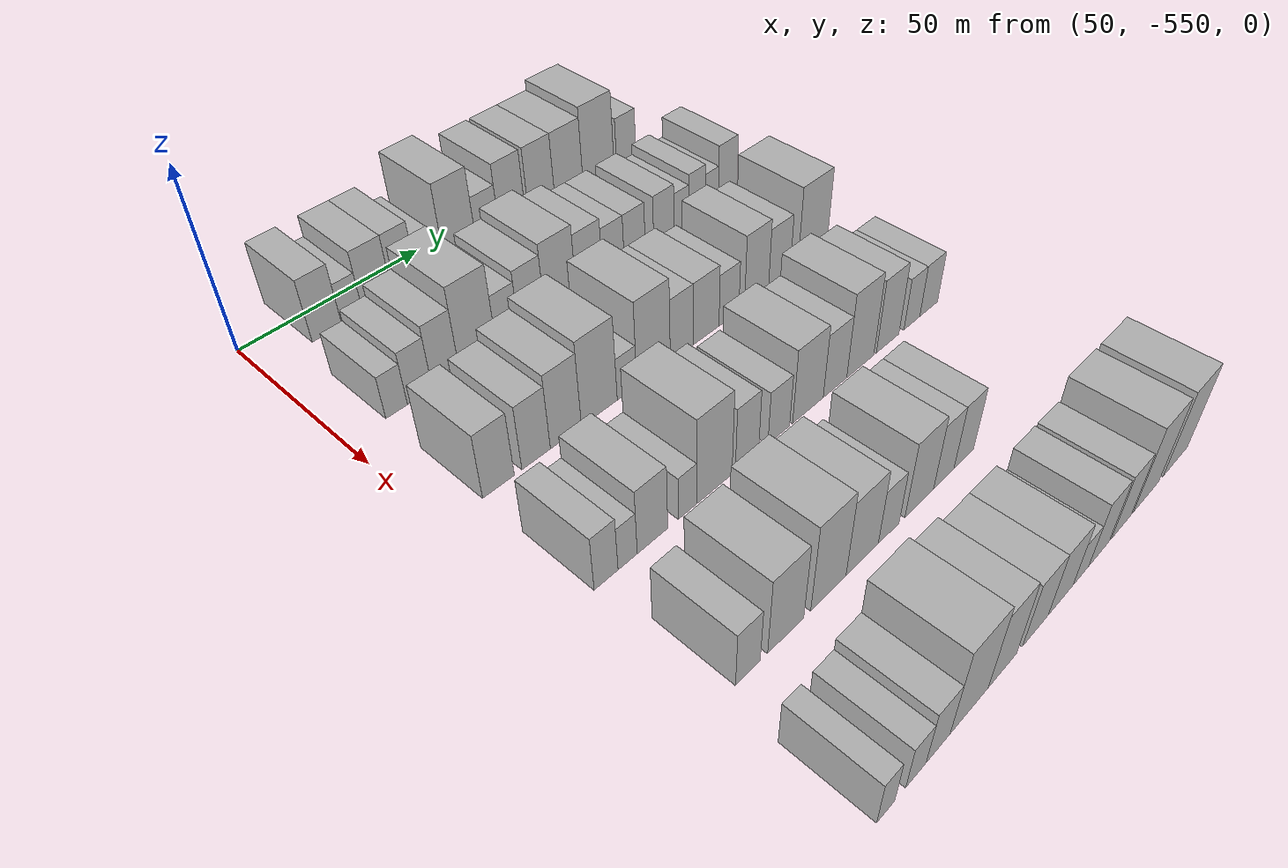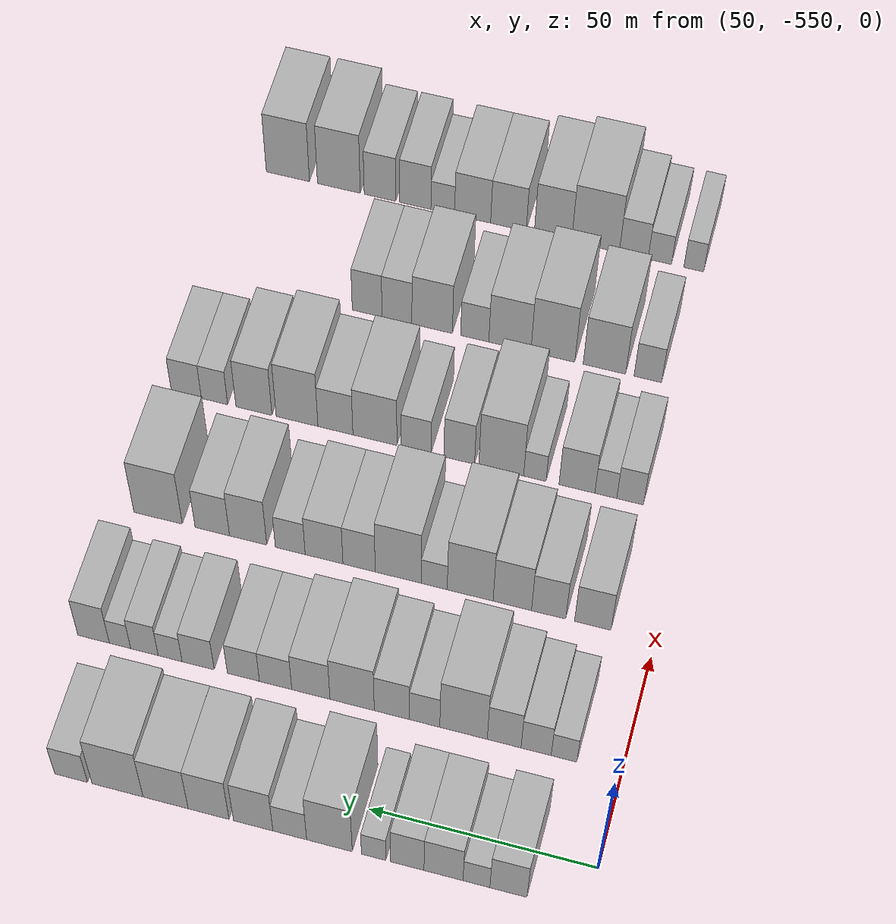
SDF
<sdf version="1.6">
 <world name="default">
  <model name="building_1">
   <static>1</static>
   <pose>50.0000 -533.0046 0 0.000000 0.000000 0.000000</pose>
   <link name="link">
    <pose>0 0 9.00 0 0 0</pose>
    <collision name="collision"><geometry><box><size>20.0000 7.9907 18.0000</size></box></geometry></collision>
    <visual name="visual">
     <cast_shadows>0</cast_shadows>
     <geometry><box><size>20.0000 7.9907 18.0000</size></box></geometry>
     <material>
      <script>
       <uri>model://HANNAS_wall/materials/scripts</uri>
       <uri>model://HANNAS_wall/materials/textures</uri>
       <name>vrc/HANNAS_wall</name>
      </script>
     </material>
    </visual>
   </link>
  </model>
  <model name="building_2">
   <static>1</static>
   <pose>50.0000 -526.0997 0 0.000000 0.000000 0.000000</pose>
   <link name="link">
    <pose>0 0 6.00 0 0 0</pose>
    <collision name="collision"><geometry><box><size>20.0000 5.8191 12.0000</size></box></geometry></collision>
    <visual name="visual">
     <cast_shadows>0</cast_shadows>
     <geometry><box><size>20.0000 5.8191 12.0000</size></box></geometry>
     <material>
      <script>
       <uri>model://HANNAS_wall/materials/scripts</uri>
       <uri>model://HANNAS_wall/materials/textures</uri>
       <name>vrc/HANNAS_wall</name>
      </script>
     </material>
    </visual>
   </link>
  </model>
  <model name="building_3">
   <static>1</static>
   <pose>50.0000 -518.9652 0 0.000000 0.000000 0.000000</pose>
   <link name="link">
    <pose>0 0 9.00 0 0 0</pose>
    <collision name="collision"><geometry><box><size>20.0000 8.4499 18.0000</size></box></geometry></collision>
    <visual name="visual">
     <cast_shadows>0</cast_shadows>
     <geometry><box><size>20.0000 8.4499 18.0000</size></box></geometry>
     <material>
      <script>
       <uri>model://HANNAS_wall/materials/scripts</uri>
       <uri>model://HANNAS_wall/materials/textures</uri>
       <name>vrc/HANNAS_wall</name>
      </script>
     </material>
    </visual>
   </link>
  </model>
  <model name="building_4">
   <static>1</static>
   <pose>50.0000 -511.0897 0 0.000000 0.000000 0.000000</pose>
   <link name="link">
    <pose>0 0 9.00 0 0 0</pose>
    <collision name="collision"><geometry><box><size>20.0000 7.3011 18.0000</size></box></geometry></collision>
    <visual name="visual">
     <cast_shadows>0</cast_shadows>
     <geometry><box><size>20.0000 7.3011 18.0000</size></box></geometry>
     <material>
      <script>
       <uri>model://HANNAS_wall/materials/scripts</uri>
       <uri>model://HANNAS_wall/materials/textures</uri>
       <name>vrc/HANNAS_wall</name>
      </script>
     </material>
    </visual>
   </link>
  </model>
  <model name="building_5">
   <static>1</static>
   <pose>50.0000 -503.7773 0 0.000000 0.000000 0.000000</pose>
   <link name="link">
    <pose>0 0 6.00 0 0 0</pose>
    <collision name="collision"><geometry><box><size>20.0000 5.3236 12.0000</size></box></geometry></collision>
    <visual name="visual">
     <cast_shadows>0</cast_shadows>
     <geometry><box><size>20.0000 5.3236 12.0000</size></box></geometry>
     <material>
      <script>
       <uri>model://HANNAS_wall/materials/scripts</uri>
       <uri>model://HANNAS_wall/materials/textures</uri>
       <name>vrc/HANNAS_wall</name>
      </script>
     </material>
    </visual>
   </link>
  </model>
  <model name="building_6">
   <static>1</static>
   <pose>50.0000 -494.1183 0 0.000000 0.000000 0.000000</pose>
   <link name="link">
    <pose>0 0 12.00 0 0 0</pose>
    <collision name="collision"><geometry><box><size>20.0000 9.9944 24.0000</size></box></geometry></collision>
    <visual name="visual">
     <cast_shadows>0</cast_shadows>
     <geometry><box><size>20.0000 9.9944 24.0000</size></box></geometry>
     <material>
      <script>
       <uri>model://HANNAS_wall/materials/scripts</uri>
       <uri>model://HANNAS_wall/materials/textures</uri>
       <name>vrc/HANNAS_wall</name>
      </script>
     </material>
    </visual>
   </link>
  </model>
  <model name="building_7">
   <static>1</static>
   <pose>50.0000 -485.4049 0 0.000000 0.000000 0.000000</pose>
   <link name="link">
    <pose>0 0 7.50 0 0 0</pose>
    <collision name="collision"><geometry><box><size>20.0000 7.4322 15.0000</size></box></geometry></collision>
    <visual name="visual">
     <cast_shadows>0</cast_shadows>
     <geometry><box><size>20.0000 7.4322 15.0000</size></box></geometry>
     <material>
      <script>
       <uri>model://HANNAS_wall/materials/scripts</uri>
       <uri>model://HANNAS_wall/materials/textures</uri>
       <name>vrc/HANNAS_wall</name>
      </script>
     </material>
    </visual>
   </link>
  </model>
  <model name="building_8">
   <static>1</static>
   <pose>50.0000 -477.3388 0 0.000000 0.000000 0.000000</pose>
   <link name="link">
    <pose>0 0 10.50 0 0 0</pose>
    <collision name="collision"><geometry><box><size>20.0000 8.7000 21.0000</size></box></geometry></collision>
    <visual name="visual">
     <cast_shadows>0</cast_shadows>
     <geometry><box><size>20.0000 8.7000 21.0000</size></box></geometry>
     <material>
      <script>
       <uri>model://HANNAS_wall/materials/scripts</uri>
       <uri>model://HANNAS_wall/materials/textures</uri>
       <name>vrc/HANNAS_wall</name>
      </script>
     </material>
    </visual>
   </link>
  </model>
  <model name="building_9">
   <static>1</static>
   <pose>50.0000 -467.4540 0 0.000000 0.000000 0.000000</pose>
   <link name="link">
    <pose>0 0 10.50 0 0 0</pose>
    <collision name="collision"><geometry><box><size>20.0000 9.0695 21.0000</size></box></geometry></collision>
    <visual name="visual">
     <cast_shadows>0</cast_shadows>
     <geometry><box><size>20.0000 9.0695 21.0000</size></box></geometry>
     <material>
      <script>
       <uri>model://HANNAS_wall/materials/scripts</uri>
       <uri>model://HANNAS_wall/materials/textures</uri>
       <name>vrc/HANNAS_wall</name>
      </script>
     </material>
    </visual>
   </link>
  </model>
  <model name="building_10">
   <static>1</static>
   <pose>50.0000 -457.8971 0 0.000000 0.000000 0.000000</pose>
   <link name="link">
    <pose>0 0 10.50 0 0 0</pose>
    <collision name="collision"><geometry><box><size>20.0000 10.0442 21.0000</size></box></geometry></collision>
    <visual name="visual">
     <cast_shadows>0</cast_shadows>
     <geometry><box><size>20.0000 10.0442 21.0000</size></box></geometry>
     <material>
      <script>
       <uri>model://HANNAS_wall/materials/scripts</uri>
       <uri>model://HANNAS_wall/materials/textures</uri>
       <name>vrc/HANNAS_wall</name>
      </script>
     </material>
    </visual>
   </link>
  </model>
  <model name="building_11">
   <static>1</static>
   <pose>50.0000 -447.1592 0 0.000000 0.000000 0.000000</pose>
   <link name="link">
    <pose>0 0 12.00 0 0 0</pose>
    <collision name="collision"><geometry><box><size>20.0000 11.4316 24.0000</size></box></geometry></collision>
    <visual name="visual">
     <cast_shadows>0</cast_shadows>
     <geometry><box><size>20.0000 11.4316 24.0000</size></box></geometry>
     <material>
      <script>
       <uri>model://HANNAS_wall/materials/scripts</uri>
       <uri>model://HANNAS_wall/materials/textures</uri>
       <name>vrc/HANNAS_wall</name>
      </script>
     </material>
    </visual>
   </link>
  </model>
  <model name="building_12">
   <static>1</static>
   <pose>50.0000 -436.7620 0 0.000000 0.000000 0.000000</pose>
   <link name="link">
    <pose>0 0 7.50 0 0 0</pose>
    <collision name="collision"><geometry><box><size>20.0000 7.3629 15.0000</size></box></geometry></collision>
    <visual name="visual">
     <cast_shadows>0</cast_shadows>
     <geometry><box><size>20.0000 7.3629 15.0000</size></box></geometry>
     <material>
      <script>
       <uri>model://HANNAS_wall/materials/scripts</uri>
       <uri>model://HANNAS_wall/materials/textures</uri>
       <name>vrc/HANNAS_wall</name>
      </script>
     </material>
    </visual>
   </link>
  </model>
  <model name="building_121">
   <static>1</static>
   <pose>82.0000 -537.1688 0 0.000000 0.000000 0.000000</pose>
   <link name="link">
    <pose>0 0 6.00 0 0 0</pose>
    <collision name="collision"><geometry><box><size>20.0000 5.6625 12.0000</size></box></geometry></collision>
    <visual name="visual">
     <cast_shadows>0</cast_shadows>
     <geometry><box><size>20.0000 5.6625 12.0000</size></box></geometry>
     <material>
      <script>
       <uri>model://HANNAS_wall/materials/scripts</uri>
       <uri>model://HANNAS_wall/materials/textures</uri>
       <name>vrc/HANNAS_wall</name>
      </script>
     </material>
    </visual>
   </link>
  </model>
  <model name="building_122">
   <static>1</static>
   <pose>82.0000 -531.0103 0 0.000000 0.000000 0.000000</pose>
   <link name="link">
    <pose>0 0 7.50 0 0 0</pose>
    <collision name="collision"><geometry><box><size>20.0000 6.6545 15.0000</size></box></geometry></collision>
    <visual name="visual">
     <cast_shadows>0</cast_shadows>
     <geometry><box><size>20.0000 6.6545 15.0000</size></box></geometry>
     <material>
      <script>
       <uri>model://HANNAS_wall/materials/scripts</uri>
       <uri>model://HANNAS_wall/materials/textures</uri>
       <name>vrc/HANNAS_wall</name>
      </script>
     </material>
    </visual>
   </link>
  </model>
  <model name="building_123">
   <static>1</static>
   <pose>82.0000 -523.9396 0 0.000000 0.000000 0.000000</pose>
   <link name="link">
    <pose>0 0 9.00 0 0 0</pose>
    <collision name="collision"><geometry><box><size>20.0000 7.4869 18.0000</size></box></geometry></collision>
    <visual name="visual">
     <cast_shadows>0</cast_shadows>
     <geometry><box><size>20.0000 7.4869 18.0000</size></box></geometry>
     <material>
      <script>
       <uri>model://HANNAS_wall/materials/scripts</uri>
       <uri>model://HANNAS_wall/materials/textures</uri>
       <name>vrc/HANNAS_wall</name>
      </script>
     </material>
    </visual>
   </link>
  </model>
  <model name="building_124">
   <static>1</static>
   <pose>82.0000 -514.9062 0 0.000000 0.000000 0.000000</pose>
   <link name="link">
    <pose>0 0 12.00 0 0 0</pose>
    <collision name="collision"><geometry><box><size>20.0000 10.5799 24.0000</size></box></geometry></collision>
    <visual name="visual">
     <cast_shadows>0</cast_shadows>
     <geometry><box><size>20.0000 10.5799 24.0000</size></box></geometry>
     <material>
      <script>
       <uri>model://HANNAS_wall/materials/scripts</uri>
       <uri>model://HANNAS_wall/materials/textures</uri>
       <name>vrc/HANNAS_wall</name>
      </script>
     </material>
    </visual>
   </link>
  </model>
  <model name="building_125">
   <static>1</static>
   <pose>82.0000 -506.2485 0 0.000000 0.000000 0.000000</pose>
   <link name="link">
    <pose>0 0 7.50 0 0 0</pose>
    <collision name="collision"><geometry><box><size>20.0000 6.7354 15.0000</size></box></geometry></collision>
    <visual name="visual">
     <cast_shadows>0</cast_shadows>
     <geometry><box><size>20.0000 6.7354 15.0000</size></box></geometry>
     <material>
      <script>
       <uri>model://HANNAS_wall/materials/scripts</uri>
       <uri>model://HANNAS_wall/materials/textures</uri>
       <name>vrc/HANNAS_wall</name>
      </script>
     </material>
    </visual>
   </link>
  </model>
  <model name="building_126">
   <static>1</static>
   <pose>82.0000 -498.9227 0 0.000000 0.000000 0.000000</pose>
   <link name="link">
    <pose>0 0 9.00 0 0 0</pose>
    <collision name="collision"><geometry><box><size>20.0000 7.9162 18.0000</size></box></geometry></collision>
    <visual name="visual">
     <cast_shadows>0</cast_shadows>
     <geometry><box><size>20.0000 7.9162 18.0000</size></box></geometry>
     <material>
      <script>
       <uri>model://HANNAS_wall/materials/scripts</uri>
       <uri>model://HANNAS_wall/materials/textures</uri>
       <name>vrc/HANNAS_wall</name>
      </script>
     </material>
    </visual>
   </link>
  </model>
  <model name="building_127">
   <static>1</static>
   <pose>82.0000 -489.9856 0 0.000000 0.000000 0.000000</pose>
   <link name="link">
    <pose>0 0 10.50 0 0 0</pose>
    <collision name="collision"><geometry><box><size>20.0000 9.9582 21.0000</size></box></geometry></collision>
    <visual name="visual">
     <cast_shadows>0</cast_shadows>
     <geometry><box><size>20.0000 9.9582 21.0000</size></box></geometry>
     <material>
      <script>
       <uri>model://HANNAS_wall/materials/scripts</uri>
       <uri>model://HANNAS_wall/materials/textures</uri>
       <name>vrc/HANNAS_wall</name>
      </script>
     </material>
    </visual>
   </link>
  </model>
  <model name="building_128">
   <static>1</static>
   <pose>82.0000 -480.6904 0 0.000000 0.000000 0.000000</pose>
   <link name="link">
    <pose>0 0 9.00 0 0 0</pose>
    <collision name="collision"><geometry><box><size>20.0000 8.6322 18.0000</size></box></geometry></collision>
    <visual name="visual">
     <cast_shadows>0</cast_shadows>
     <geometry><box><size>20.0000 8.6322 18.0000</size></box></geometry>
     <material>
      <script>
       <uri>model://HANNAS_wall/materials/scripts</uri>
       <uri>model://HANNAS_wall/materials/textures</uri>
       <name>vrc/HANNAS_wall</name>
      </script>
     </material>
    </visual>
   </link>
  </model>
  <model name="building_129">
   <static>1</static>
   <pose>82.0000 -472.7126 0 0.000000 0.000000 0.000000</pose>
   <link name="link">
    <pose>0 0 7.50 0 0 0</pose>
    <collision name="collision"><geometry><box><size>20.0000 7.3234 15.0000</size></box></geometry></collision>
    <visual name="visual">
     <cast_shadows>0</cast_shadows>
     <geometry><box><size>20.0000 7.3234 15.0000</size></box></geometry>
     <material>
      <script>
       <uri>model://HANNAS_wall/materials/scripts</uri>
       <uri>model://HANNAS_wall/materials/textures</uri>
       <name>vrc/HANNAS_wall</name>
      </script>
     </material>
    </visual>
   </link>
  </model>
  <model name="building_130">
   <static>1</static>
   <pose>82.0000 -465.4014 0 0.000000 0.000000 0.000000</pose>
   <link name="link">
    <pose>0 0 7.50 0 0 0</pose>
    <collision name="collision"><geometry><box><size>20.0000 7.2991 15.0000</size></box></geometry></collision>
    <visual name="visual">
     <cast_shadows>0</cast_shadows>
     <geometry><box><size>20.0000 7.2991 15.0000</size></box></geometry>
     <material>
      <script>
       <uri>model://HANNAS_wall/materials/scripts</uri>
       <uri>model://HANNAS_wall/materials/textures</uri>
       <name>vrc/HANNAS_wall</name>
      </script>
     </material>
    </visual>
   </link>
  </model>
  <model name="building_131">
   <static>1</static>
   <pose>82.0000 -455.0854 0 0.000000 0.000000 0.000000</pose>
   <link name="link">
    <pose>0 0 7.50 0 0 0</pose>
    <collision name="collision"><geometry><box><size>20.0000 7.3329 15.0000</size></box></geometry></collision>
    <visual name="visual">
     <cast_shadows>0</cast_shadows>
     <geometry><box><size>20.0000 7.3329 15.0000</size></box></geometry>
     <material>
      <script>
       <uri>model://HANNAS_wall/materials/scripts</uri>
       <uri>model://HANNAS_wall/materials/textures</uri>
       <name>vrc/HANNAS_wall</name>
      </script>
     </material>
    </visual>
   </link>
  </model>
  <model name="building_132">
   <static>1</static>
   <pose>82.0000 -448.6735 0 0.000000 0.000000 0.000000</pose>
   <link name="link">
    <pose>0 0 6.00 0 0 0</pose>
    <collision name="collision"><geometry><box><size>20.0000 5.4909 12.0000</size></box></geometry></collision>
    <visual name="visual">
     <cast_shadows>0</cast_shadows>
     <geometry><box><size>20.0000 5.4909 12.0000</size></box></geometry>
     <material>
      <script>
       <uri>model://HANNAS_wall/materials/scripts</uri>
       <uri>model://HANNAS_wall/materials/textures</uri>
       <name>vrc/HANNAS_wall</name>
      </script>
     </material>
    </visual>
   </link>
  </model>
  <model name="building_133">
   <static>1</static>
   <pose>82.0000 -442.7647 0 0.000000 0.000000 0.000000</pose>
   <link name="link">
    <pose>0 0 7.50 0 0 0</pose>
    <collision name="collision"><geometry><box><size>20.0000 6.3267 15.0000</size></box></geometry></collision>
    <visual name="visual">
     <cast_shadows>0</cast_shadows>
     <geometry><box><size>20.0000 6.3267 15.0000</size></box></geometry>
     <material>
      <script>
       <uri>model://HANNAS_wall/materials/scripts</uri>
       <uri>model://HANNAS_wall/materials/textures</uri>
       <name>vrc/HANNAS_wall</name>
      </script>
     </material>
    </visual>
   </link>
  </model>
  <model name="building_134">
   <static>1</static>
   <pose>82.0000 -437.1494 0 0.000000 0.000000 0.000000</pose>
   <link name="link">
    <pose>0 0 6.00 0 0 0</pose>
    <collision name="collision"><geometry><box><size>20.0000 4.9039 12.0000</size></box></geometry></collision>
    <visual name="visual">
     <cast_shadows>0</cast_shadows>
     <geometry><box><size>20.0000 4.9039 12.0000</size></box></geometry>
     <material>
      <script>
       <uri>model://HANNAS_wall/materials/scripts</uri>
       <uri>model://HANNAS_wall/materials/textures</uri>
       <name>vrc/HANNAS_wall</name>
      </script>
     </material>
    </visual>
   </link>
  </model>
  <model name="building_135">
   <static>1</static>
   <pose>82.0000 -431.0635 0 0.000000 0.000000 0.000000</pose>
   <link name="link">
    <pose>0 0 9.00 0 0 0</pose>
    <collision name="collision"><geometry><box><size>20.0000 7.2678 18.0000</size></box></geometry></collision>
    <visual name="visual">
     <cast_shadows>0</cast_shadows>
     <geometry><box><size>20.0000 7.2678 18.0000</size></box></geometry>
     <material>
      <script>
       <uri>model://HANNAS_wall/materials/scripts</uri>
       <uri>model://HANNAS_wall/materials/textures</uri>
       <name>vrc/HANNAS_wall</name>
      </script>
     </material>
    </visual>
   </link>
  </model>
  <model name="building_249">
   <static>1</static>
   <pose>114.0000 -535.8868 0 0.000000 0.000000 0.000000</pose>
   <link name="link">
    <pose>0 0 9.00 0 0 0</pose>
    <collision name="collision"><geometry><box><size>20.0000 8.2265 18.0000</size></box></geometry></collision>
    <visual name="visual">
     <cast_shadows>0</cast_shadows>
     <geometry><box><size>20.0000 8.2265 18.0000</size></box></geometry>
     <material>
      <script>
       <uri>model://HANNAS_wall/materials/scripts</uri>
       <uri>model://HANNAS_wall/materials/textures</uri>
       <name>vrc/HANNAS_wall</name>
      </script>
     </material>
    </visual>
   </link>
  </model>
  <model name="building_250">
   <static>1</static>
   <pose>114.0000 -525.8974 0 0.000000 0.000000 0.000000</pose>
   <link name="link">
    <pose>0 0 9.00 0 0 0</pose>
    <collision name="collision"><geometry><box><size>20.0000 7.7523 18.0000</size></box></geometry></collision>
    <visual name="visual">
     <cast_shadows>0</cast_shadows>
     <geometry><box><size>20.0000 7.7523 18.0000</size></box></geometry>
     <material>
      <script>
       <uri>model://HANNAS_wall/materials/scripts</uri>
       <uri>model://HANNAS_wall/materials/textures</uri>
       <name>vrc/HANNAS_wall</name>
      </script>
     </material>
    </visual>
   </link>
  </model>
  <model name="building_251">
   <static>1</static>
   <pose>114.0000 -517.6503 0 0.000000 0.000000 0.000000</pose>
   <link name="link">
    <pose>0 0 10.50 0 0 0</pose>
    <collision name="collision"><geometry><box><size>20.0000 8.7419 21.0000</size></box></geometry></collision>
    <visual name="visual">
     <cast_shadows>0</cast_shadows>
     <geometry><box><size>20.0000 8.7419 21.0000</size></box></geometry>
     <material>
      <script>
       <uri>model://HANNAS_wall/materials/scripts</uri>
       <uri>model://HANNAS_wall/materials/textures</uri>
       <name>vrc/HANNAS_wall</name>
      </script>
     </material>
    </visual>
   </link>
  </model>
  <model name="building_252">
   <static>1</static>
   <pose>114.0000 -508.0231 0 0.000000 0.000000 0.000000</pose>
   <link name="link">
    <pose>0 0 12.00 0 0 0</pose>
    <collision name="collision"><geometry><box><size>20.0000 10.5124 24.0000</size></box></geometry></collision>
    <visual name="visual">
     <cast_shadows>0</cast_shadows>
     <geometry><box><size>20.0000 10.5124 24.0000</size></box></geometry>
     <material>
      <script>
       <uri>model://HANNAS_wall/materials/scripts</uri>
       <uri>model://HANNAS_wall/materials/textures</uri>
       <name>vrc/HANNAS_wall</name>
      </script>
     </material>
    </visual>
   </link>
  </model>
  <model name="building_253">
   <static>1</static>
   <pose>114.0000 -499.7927 0 0.000000 0.000000 0.000000</pose>
   <link name="link">
    <pose>0 0 6.00 0 0 0</pose>
    <collision name="collision"><geometry><box><size>20.0000 5.9484 12.0000</size></box></geometry></collision>
    <visual name="visual">
     <cast_shadows>0</cast_shadows>
     <geometry><box><size>20.0000 5.9484 12.0000</size></box></geometry>
     <material>
      <script>
       <uri>model://HANNAS_wall/materials/scripts</uri>
       <uri>model://HANNAS_wall/materials/textures</uri>
       <name>vrc/HANNAS_wall</name>
      </script>
     </material>
    </visual>
   </link>
  </model>
  <model name="building_254">
   <static>1</static>
   <pose>114.0000 -491.5310 0 0.000000 0.000000 0.000000</pose>
   <link name="link">
    <pose>0 0 12.00 0 0 0</pose>
    <collision name="collision"><geometry><box><size>20.0000 10.5751 24.0000</size></box></geometry></collision>
    <visual name="visual">
     <cast_shadows>0</cast_shadows>
     <geometry><box><size>20.0000 10.5751 24.0000</size></box></geometry>
     <material>
      <script>
       <uri>model://HANNAS_wall/materials/scripts</uri>
       <uri>model://HANNAS_wall/materials/textures</uri>
       <name>vrc/HANNAS_wall</name>
      </script>
     </material>
    </visual>
   </link>
  </model>
  <model name="building_255">
   <static>1</static>
   <pose>114.0000 -482.5144 0 0.000000 0.000000 0.000000</pose>
   <link name="link">
    <pose>0 0 9.00 0 0 0</pose>
    <collision name="collision"><geometry><box><size>20.0000 7.4580 18.0000</size></box></geometry></collision>
    <visual name="visual">
     <cast_shadows>0</cast_shadows>
     <geometry><box><size>20.0000 7.4580 18.0000</size></box></geometry>
     <material>
      <script>
       <uri>model://HANNAS_wall/materials/scripts</uri>
       <uri>model://HANNAS_wall/materials/textures</uri>
       <name>vrc/HANNAS_wall</name>
      </script>
     </material>
    </visual>
   </link>
  </model>
  <model name="building_256">
   <static>1</static>
   <pose>114.0000 -474.4060 0 0.000000 0.000000 0.000000</pose>
   <link name="link">
    <pose>0 0 9.00 0 0 0</pose>
    <collision name="collision"><geometry><box><size>20.0000 8.7588 18.0000</size></box></geometry></collision>
    <visual name="visual">
     <cast_shadows>0</cast_shadows>
     <geometry><box><size>20.0000 8.7588 18.0000</size></box></geometry>
     <material>
      <script>
       <uri>model://HANNAS_wall/materials/scripts</uri>
       <uri>model://HANNAS_wall/materials/textures</uri>
       <name>vrc/HANNAS_wall</name>
      </script>
     </material>
    </visual>
   </link>
  </model>
  <model name="building_257">
   <static>1</static>
   <pose>114.0000 -466.5549 0 0.000000 0.000000 0.000000</pose>
   <link name="link">
    <pose>0 0 7.50 0 0 0</pose>
    <collision name="collision"><geometry><box><size>20.0000 6.9434 15.0000</size></box></geometry></collision>
    <visual name="visual">
     <cast_shadows>0</cast_shadows>
     <geometry><box><size>20.0000 6.9434 15.0000</size></box></geometry>
     <material>
      <script>
       <uri>model://HANNAS_wall/materials/scripts</uri>
       <uri>model://HANNAS_wall/materials/textures</uri>
       <name>vrc/HANNAS_wall</name>
      </script>
     </material>
    </visual>
   </link>
  </model>
  <model name="building_258">
   <static>1</static>
   <pose>114.0000 -456.7340 0 0.000000 0.000000 0.000000</pose>
   <link name="link">
    <pose>0 0 10.50 0 0 0</pose>
    <collision name="collision"><geometry><box><size>20.0000 8.6985 21.0000</size></box></geometry></collision>
    <visual name="visual">
     <cast_shadows>0</cast_shadows>
     <geometry><box><size>20.0000 8.6985 21.0000</size></box></geometry>
     <material>
      <script>
       <uri>model://HANNAS_wall/materials/scripts</uri>
       <uri>model://HANNAS_wall/materials/textures</uri>
       <name>vrc/HANNAS_wall</name>
      </script>
     </material>
    </visual>
   </link>
  </model>
  <model name="building_259">
   <static>1</static>
   <pose>114.0000 -448.3469 0 0.000000 0.000000 0.000000</pose>
   <link name="link">
    <pose>0 0 9.00 0 0 0</pose>
    <collision name="collision"><geometry><box><size>20.0000 8.0756 18.0000</size></box></geometry></collision>
    <visual name="visual">
     <cast_shadows>0</cast_shadows>
     <geometry><box><size>20.0000 8.0756 18.0000</size></box></geometry>
     <material>
      <script>
       <uri>model://HANNAS_wall/materials/scripts</uri>
       <uri>model://HANNAS_wall/materials/textures</uri>
       <name>vrc/HANNAS_wall</name>
      </script>
     </material>
    </visual>
   </link>
  </model>
  <model name="building_260">
   <static>1</static>
   <pose>114.0000 -435.6131 0 0.000000 0.000000 0.000000</pose>
   <link name="link">
    <pose>0 0 12.00 0 0 0</pose>
    <collision name="collision"><geometry><box><size>20.0000 11.3921 24.0000</size></box></geometry></collision>
    <visual name="visual">
     <cast_shadows>0</cast_shadows>
     <geometry><box><size>20.0000 11.3921 24.0000</size></box></geometry>
     <material>
      <script>
       <uri>model://HANNAS_wall/materials/scripts</uri>
       <uri>model://HANNAS_wall/materials/textures</uri>
       <name>vrc/HANNAS_wall</name>
      </script>
     </material>
    </visual>
   </link>
  </model>
  <model name="building_366">
   <static>1</static>
   <pose>146.0000 -536.9182 0 0.000000 0.000000 0.000000</pose>
   <link name="link">
    <pose>0 0 7.50 0 0 0</pose>
    <collision name="collision"><geometry><box><size>20.0000 6.1636 15.0000</size></box></geometry></collision>
    <visual name="visual">
     <cast_shadows>0</cast_shadows>
     <geometry><box><size>20.0000 6.1636 15.0000</size></box></geometry>
     <material>
      <script>
       <uri>model://HANNAS_wall/materials/scripts</uri>
       <uri>model://HANNAS_wall/materials/textures</uri>
       <name>vrc/HANNAS_wall</name>
      </script>
     </material>
    </visual>
   </link>
  </model>
  <model name="building_367">
   <static>1</static>
   <pose>146.0000 -531.3011 0 0.000000 0.000000 0.000000</pose>
   <link name="link">
    <pose>0 0 6.00 0 0 0</pose>
    <collision name="collision"><geometry><box><size>20.0000 5.0704 12.0000</size></box></geometry></collision>
    <visual name="visual">
     <cast_shadows>0</cast_shadows>
     <geometry><box><size>20.0000 5.0704 12.0000</size></box></geometry>
     <material>
      <script>
       <uri>model://HANNAS_wall/materials/scripts</uri>
       <uri>model://HANNAS_wall/materials/textures</uri>
       <name>vrc/HANNAS_wall</name>
      </script>
     </material>
    </visual>
   </link>
  </model>
  <model name="building_368">
   <static>1</static>
   <pose>146.0000 -524.5985 0 0.000000 0.000000 0.000000</pose>
   <link name="link">
    <pose>0 0 9.00 0 0 0</pose>
    <collision name="collision"><geometry><box><size>20.0000 8.3349 18.0000</size></box></geometry></collision>
    <visual name="visual">
     <cast_shadows>0</cast_shadows>
     <geometry><box><size>20.0000 8.3349 18.0000</size></box></geometry>
     <material>
      <script>
       <uri>model://HANNAS_wall/materials/scripts</uri>
       <uri>model://HANNAS_wall/materials/textures</uri>
       <name>vrc/HANNAS_wall</name>
      </script>
     </material>
    </visual>
   </link>
  </model>
  <model name="building_369">
   <static>1</static>
   <pose>146.0000 -514.8141 0 0.000000 0.000000 0.000000</pose>
   <link name="link">
    <pose>0 0 6.00 0 0 0</pose>
    <collision name="collision"><geometry><box><size>20.0000 5.2340 12.0000</size></box></geometry></collision>
    <visual name="visual">
     <cast_shadows>0</cast_shadows>
     <geometry><box><size>20.0000 5.2340 12.0000</size></box></geometry>
     <material>
      <script>
       <uri>model://HANNAS_wall/materials/scripts</uri>
       <uri>model://HANNAS_wall/materials/textures</uri>
       <name>vrc/HANNAS_wall</name>
      </script>
     </material>
    </visual>
   </link>
  </model>
  <model name="building_370">
   <static>1</static>
   <pose>146.0000 -506.9523 0 0.000000 0.000000 0.000000</pose>
   <link name="link">
    <pose>0 0 12.00 0 0 0</pose>
    <collision name="collision"><geometry><box><size>20.0000 10.4896 24.0000</size></box></geometry></collision>
    <visual name="visual">
     <cast_shadows>0</cast_shadows>
     <geometry><box><size>20.0000 10.4896 24.0000</size></box></geometry>
     <material>
      <script>
       <uri>model://HANNAS_wall/materials/scripts</uri>
       <uri>model://HANNAS_wall/materials/textures</uri>
       <name>vrc/HANNAS_wall</name>
      </script>
     </material>
    </visual>
   </link>
  </model>
  <model name="building_371">
   <static>1</static>
   <pose>146.0000 -497.0935 0 0.000000 0.000000 0.000000</pose>
   <link name="link">
    <pose>0 0 9.00 0 0 0</pose>
    <collision name="collision"><geometry><box><size>20.0000 7.2279 18.0000</size></box></geometry></collision>
    <visual name="visual">
     <cast_shadows>0</cast_shadows>
     <geometry><box><size>20.0000 7.2279 18.0000</size></box></geometry>
     <material>
      <script>
       <uri>model://HANNAS_wall/materials/scripts</uri>
       <uri>model://HANNAS_wall/materials/textures</uri>
       <name>vrc/HANNAS_wall</name>
      </script>
     </material>
    </visual>
   </link>
  </model>
  <model name="building_372">
   <static>1</static>
   <pose>146.0000 -486.9497 0 0.000000 0.000000 0.000000</pose>
   <link name="link">
    <pose>0 0 7.50 0 0 0</pose>
    <collision name="collision"><geometry><box><size>20.0000 7.0597 15.0000</size></box></geometry></collision>
    <visual name="visual">
     <cast_shadows>0</cast_shadows>
     <geometry><box><size>20.0000 7.0597 15.0000</size></box></geometry>
     <material>
      <script>
       <uri>model://HANNAS_wall/materials/scripts</uri>
       <uri>model://HANNAS_wall/materials/textures</uri>
       <name>vrc/HANNAS_wall</name>
      </script>
     </material>
    </visual>
   </link>
  </model>
  <model name="building_373">
   <static>1</static>
   <pose>146.0000 -477.2125 0 0.000000 0.000000 0.000000</pose>
   <link name="link">
    <pose>0 0 10.50 0 0 0</pose>
    <collision name="collision"><geometry><box><size>20.0000 10.4147 21.0000</size></box></geometry></collision>
    <visual name="visual">
     <cast_shadows>0</cast_shadows>
     <geometry><box><size>20.0000 10.4147 21.0000</size></box></geometry>
     <material>
      <script>
       <uri>model://HANNAS_wall/materials/scripts</uri>
       <uri>model://HANNAS_wall/materials/textures</uri>
       <name>vrc/HANNAS_wall</name>
      </script>
     </material>
    </visual>
   </link>
  </model>
  <model name="building_374">
   <static>1</static>
   <pose>146.0000 -467.8447 0 0.000000 0.000000 0.000000</pose>
   <link name="link">
    <pose>0 0 9.00 0 0 0</pose>
    <collision name="collision"><geometry><box><size>20.0000 8.3209 18.0000</size></box></geometry></collision>
    <visual name="visual">
     <cast_shadows>0</cast_shadows>
     <geometry><box><size>20.0000 8.3209 18.0000</size></box></geometry>
     <material>
      <script>
       <uri>model://HANNAS_wall/materials/scripts</uri>
       <uri>model://HANNAS_wall/materials/textures</uri>
       <name>vrc/HANNAS_wall</name>
      </script>
     </material>
    </visual>
   </link>
  </model>
  <model name="building_375">
   <static>1</static>
   <pose>146.0000 -458.6997 0 0.000000 0.000000 0.000000</pose>
   <link name="link">
    <pose>0 0 12.00 0 0 0</pose>
    <collision name="collision"><geometry><box><size>20.0000 9.9692 24.0000</size></box></geometry></collision>
    <visual name="visual">
     <cast_shadows>0</cast_shadows>
     <geometry><box><size>20.0000 9.9692 24.0000</size></box></geometry>
     <material>
      <script>
       <uri>model://HANNAS_wall/materials/scripts</uri>
       <uri>model://HANNAS_wall/materials/textures</uri>
       <name>vrc/HANNAS_wall</name>
      </script>
     </material>
    </visual>
   </link>
  </model>
  <model name="building_376">
   <static>1</static>
   <pose>146.0000 -448.3915 0 0.000000 0.000000 0.000000</pose>
   <link name="link">
    <pose>0 0 10.50 0 0 0</pose>
    <collision name="collision"><geometry><box><size>20.0000 8.6470 21.0000</size></box></geometry></collision>
    <visual name="visual">
     <cast_shadows>0</cast_shadows>
     <geometry><box><size>20.0000 8.6470 21.0000</size></box></geometry>
     <material>
      <script>
       <uri>model://HANNAS_wall/materials/scripts</uri>
       <uri>model://HANNAS_wall/materials/textures</uri>
       <name>vrc/HANNAS_wall</name>
      </script>
     </material>
    </visual>
   </link>
  </model>
  <model name="building_377">
   <static>1</static>
   <pose>146.0000 -438.9062 0 0.000000 0.000000 0.000000</pose>
   <link name="link">
    <pose>0 0 7.50 0 0 0</pose>
    <collision name="collision"><geometry><box><size>20.0000 6.3237 15.0000</size></box></geometry></collision>
    <visual name="visual">
     <cast_shadows>0</cast_shadows>
     <geometry><box><size>20.0000 6.3237 15.0000</size></box></geometry>
     <material>
      <script>
       <uri>model://HANNAS_wall/materials/scripts</uri>
       <uri>model://HANNAS_wall/materials/textures</uri>
       <name>vrc/HANNAS_wall</name>
      </script>
     </material>
    </visual>
   </link>
  </model>
  <model name="building_378">
   <static>1</static>
   <pose>146.0000 -432.1113 0 0.000000 0.000000 0.000000</pose>
   <link name="link">
    <pose>0 0 7.50 0 0 0</pose>
    <collision name="collision"><geometry><box><size>20.0000 7.2661 15.0000</size></box></geometry></collision>
    <visual name="visual">
     <cast_shadows>0</cast_shadows>
     <geometry><box><size>20.0000 7.2661 15.0000</size></box></geometry>
     <material>
      <script>
       <uri>model://HANNAS_wall/materials/scripts</uri>
       <uri>model://HANNAS_wall/materials/textures</uri>
       <name>vrc/HANNAS_wall</name>
      </script>
     </material>
    </visual>
   </link>
  </model>
  <model name="building_492">
   <static>1</static>
   <pose>178.0000 -533.7388 0 0.000000 0.000000 0.000000</pose>
   <link name="link">
    <pose>0 0 7.50 0 0 0</pose>
    <collision name="collision"><geometry><box><size>20.0000 6.5223 15.0000</size></box></geometry></collision>
    <visual name="visual">
     <cast_shadows>0</cast_shadows>
     <geometry><box><size>20.0000 6.5223 15.0000</size></box></geometry>
     <material>
      <script>
       <uri>model://HANNAS_wall/materials/scripts</uri>
       <uri>model://HANNAS_wall/materials/textures</uri>
       <name>vrc/HANNAS_wall</name>
      </script>
     </material>
    </visual>
   </link>
  </model>
  <model name="building_493">
   <static>1</static>
   <pose>178.0000 -523.4345 0 0.000000 0.000000 0.000000</pose>
   <link name="link">
    <pose>0 0 10.50 0 0 0</pose>
    <collision name="collision"><geometry><box><size>20.0000 10.0863 21.0000</size></box></geometry></collision>
    <visual name="visual">
     <cast_shadows>0</cast_shadows>
     <geometry><box><size>20.0000 10.0863 21.0000</size></box></geometry>
     <material>
      <script>
       <uri>model://HANNAS_wall/materials/scripts</uri>
       <uri>model://HANNAS_wall/materials/textures</uri>
       <name>vrc/HANNAS_wall</name>
      </script>
     </material>
    </visual>
   </link>
  </model>
  <model name="building_494">
   <static>1</static>
   <pose>178.0000 -511.1507 0 0.000000 0.000000 0.000000</pose>
   <link name="link">
    <pose>0 0 12.00 0 0 0</pose>
    <collision name="collision"><geometry><box><size>20.0000 10.4812 24.0000</size></box></geometry></collision>
    <visual name="visual">
     <cast_shadows>0</cast_shadows>
     <geometry><box><size>20.0000 10.4812 24.0000</size></box></geometry>
     <material>
      <script>
       <uri>model://HANNAS_wall/materials/scripts</uri>
       <uri>model://HANNAS_wall/materials/textures</uri>
       <name>vrc/HANNAS_wall</name>
      </script>
     </material>
    </visual>
   </link>
  </model>
  <model name="building_495">
   <static>1</static>
   <pose>178.0000 -500.8539 0 0.000000 0.000000 0.000000</pose>
   <link name="link">
    <pose>0 0 10.50 0 0 0</pose>
    <collision name="collision"><geometry><box><size>20.0000 10.1125 21.0000</size></box></geometry></collision>
    <visual name="visual">
     <cast_shadows>0</cast_shadows>
     <geometry><box><size>20.0000 10.1125 21.0000</size></box></geometry>
     <material>
      <script>
       <uri>model://HANNAS_wall/materials/scripts</uri>
       <uri>model://HANNAS_wall/materials/textures</uri>
       <name>vrc/HANNAS_wall</name>
      </script>
     </material>
    </visual>
   </link>
  </model>
  <model name="building_496">
   <static>1</static>
   <pose>178.0000 -492.4108 0 0.000000 0.000000 0.000000</pose>
   <link name="link">
    <pose>0 0 7.50 0 0 0</pose>
    <collision name="collision"><geometry><box><size>20.0000 6.7737 15.0000</size></box></geometry></collision>
    <visual name="visual">
     <cast_shadows>0</cast_shadows>
     <geometry><box><size>20.0000 6.7737 15.0000</size></box></geometry>
     <material>
      <script>
       <uri>model://HANNAS_wall/materials/scripts</uri>
       <uri>model://HANNAS_wall/materials/textures</uri>
       <name>vrc/HANNAS_wall</name>
      </script>
     </material>
    </visual>
   </link>
  </model>
  <model name="building_497">
   <static>1</static>
   <pose>178.0000 -482.1311 0 0.000000 0.000000 0.000000</pose>
   <link name="link">
    <pose>0 0 10.50 0 0 0</pose>
    <collision name="collision"><geometry><box><size>20.0000 9.7857 21.0000</size></box></geometry></collision>
    <visual name="visual">
     <cast_shadows>0</cast_shadows>
     <geometry><box><size>20.0000 9.7857 21.0000</size></box></geometry>
     <material>
      <script>
       <uri>model://HANNAS_wall/materials/scripts</uri>
       <uri>model://HANNAS_wall/materials/textures</uri>
       <name>vrc/HANNAS_wall</name>
      </script>
     </material>
    </visual>
   </link>
  </model>
  <model name="building_498">
   <static>1</static>
   <pose>178.0000 -473.6144 0 0.000000 0.000000 0.000000</pose>
   <link name="link">
    <pose>0 0 9.00 0 0 0</pose>
    <collision name="collision"><geometry><box><size>20.0000 7.2476 18.0000</size></box></geometry></collision>
    <visual name="visual">
     <cast_shadows>0</cast_shadows>
     <geometry><box><size>20.0000 7.2476 18.0000</size></box></geometry>
     <material>
      <script>
       <uri>model://HANNAS_wall/materials/scripts</uri>
       <uri>model://HANNAS_wall/materials/textures</uri>
       <name>vrc/HANNAS_wall</name>
      </script>
     </material>
    </visual>
   </link>
  </model>
  <model name="building_499">
   <static>1</static>
   <pose>178.0000 -466.3749 0 0.000000 0.000000 0.000000</pose>
   <link name="link">
    <pose>0 0 9.00 0 0 0</pose>
    <collision name="collision"><geometry><box><size>20.0000 7.2314 18.0000</size></box></geometry></collision>
    <visual name="visual">
     <cast_shadows>0</cast_shadows>
     <geometry><box><size>20.0000 7.2314 18.0000</size></box></geometry>
     <material>
      <script>
       <uri>model://HANNAS_wall/materials/scripts</uri>
       <uri>model://HANNAS_wall/materials/textures</uri>
       <name>vrc/HANNAS_wall</name>
      </script>
     </material>
    </visual>
   </link>
  </model>
  <model name="building_602">
   <static>1</static>
   <pose>210.0000 -537.5975 0 0.000000 0.000000 0.000000</pose>
   <link name="link">
    <pose>0 0 6.00 0 0 0</pose>
    <collision name="collision"><geometry><box><size>20.0000 4.8051 12.0000</size></box></geometry></collision>
    <visual name="visual">
     <cast_shadows>0</cast_shadows>
     <geometry><box><size>20.0000 4.8051 12.0000</size></box></geometry>
     <material>
      <script>
       <uri>model://HANNAS_wall/materials/scripts</uri>
       <uri>model://HANNAS_wall/materials/textures</uri>
       <name>vrc/HANNAS_wall</name>
      </script>
     </material>
    </visual>
   </link>
  </model>
  <model name="building_603">
   <static>1</static>
   <pose>210.0000 -529.3650 0 0.000000 0.000000 0.000000</pose>
   <link name="link">
    <pose>0 0 6.00 0 0 0</pose>
    <collision name="collision"><geometry><box><size>20.0000 5.6599 12.0000</size></box></geometry></collision>
    <visual name="visual">
     <cast_shadows>0</cast_shadows>
     <geometry><box><size>20.0000 5.6599 12.0000</size></box></geometry>
     <material>
      <script>
       <uri>model://HANNAS_wall/materials/scripts</uri>
       <uri>model://HANNAS_wall/materials/textures</uri>
       <name>vrc/HANNAS_wall</name>
      </script>
     </material>
    </visual>
   </link>
  </model>
  <model name="building_604">
   <static>1</static>
   <pose>210.0000 -523.0389 0 0.000000 0.000000 0.000000</pose>
   <link name="link">
    <pose>0 0 7.50 0 0 0</pose>
    <collision name="collision"><geometry><box><size>20.0000 6.9921 15.0000</size></box></geometry></collision>
    <visual name="visual">
     <cast_shadows>0</cast_shadows>
     <geometry><box><size>20.0000 6.9921 15.0000</size></box></geometry>
     <material>
      <script>
       <uri>model://HANNAS_wall/materials/scripts</uri>
       <uri>model://HANNAS_wall/materials/textures</uri>
       <name>vrc/HANNAS_wall</name>
      </script>
     </material>
    </visual>
   </link>
  </model>
  <model name="building_605">
   <static>1</static>
   <pose>210.0000 -513.7156 0 0.000000 0.000000 0.000000</pose>
   <link name="link">
    <pose>0 0 12.00 0 0 0</pose>
    <collision name="collision"><geometry><box><size>20.0000 11.6545 24.0000</size></box></geometry></collision>
    <visual name="visual">
     <cast_shadows>0</cast_shadows>
     <geometry><box><size>20.0000 11.6545 24.0000</size></box></geometry>
     <material>
      <script>
       <uri>model://HANNAS_wall/materials/scripts</uri>
       <uri>model://HANNAS_wall/materials/textures</uri>
       <name>vrc/HANNAS_wall</name>
      </script>
     </material>
    </visual>
   </link>
  </model>
  <model name="building_606">
   <static>1</static>
   <pose>210.0000 -503.3233 0 0.000000 0.000000 0.000000</pose>
   <link name="link">
    <pose>0 0 10.50 0 0 0</pose>
    <collision name="collision"><geometry><box><size>20.0000 9.1302 21.0000</size></box></geometry></collision>
    <visual name="visual">
     <cast_shadows>0</cast_shadows>
     <geometry><box><size>20.0000 9.1302 21.0000</size></box></geometry>
     <material>
      <script>
       <uri>model://HANNAS_wall/materials/scripts</uri>
       <uri>model://HANNAS_wall/materials/textures</uri>
       <name>vrc/HANNAS_wall</name>
      </script>
     </material>
    </visual>
   </link>
  </model>
  <model name="building_607">
   <static>1</static>
   <pose>210.0000 -492.3815 0 0.000000 0.000000 0.000000</pose>
   <link name="link">
    <pose>0 0 9.00 0 0 0</pose>
    <collision name="collision"><geometry><box><size>20.0000 8.7533 18.0000</size></box></geometry></collision>
    <visual name="visual">
     <cast_shadows>0</cast_shadows>
     <geometry><box><size>20.0000 8.7533 18.0000</size></box></geometry>
     <material>
      <script>
       <uri>model://HANNAS_wall/materials/scripts</uri>
       <uri>model://HANNAS_wall/materials/textures</uri>
       <name>vrc/HANNAS_wall</name>
      </script>
     </material>
    </visual>
   </link>
  </model>
  <model name="building_608">
   <static>1</static>
   <pose>210.0000 -483.5496 0 0.000000 0.000000 0.000000</pose>
   <link name="link">
    <pose>0 0 9.00 0 0 0</pose>
    <collision name="collision"><geometry><box><size>20.0000 8.9105 18.0000</size></box></geometry></collision>
    <visual name="visual">
     <cast_shadows>0</cast_shadows>
     <geometry><box><size>20.0000 8.9105 18.0000</size></box></geometry>
     <material>
      <script>
       <uri>model://HANNAS_wall/materials/scripts</uri>
       <uri>model://HANNAS_wall/materials/textures</uri>
       <name>vrc/HANNAS_wall</name>
      </script>
     </material>
    </visual>
   </link>
  </model>
  <model name="building_609">
   <static>1</static>
   <pose>210.0000 -476.1670 0 0.000000 0.000000 0.000000</pose>
   <link name="link">
    <pose>0 0 6.00 0 0 0</pose>
    <collision name="collision"><geometry><box><size>20.0000 5.8547 12.0000</size></box></geometry></collision>
    <visual name="visual">
     <cast_shadows>0</cast_shadows>
     <geometry><box><size>20.0000 5.8547 12.0000</size></box></geometry>
     <material>
      <script>
       <uri>model://HANNAS_wall/materials/scripts</uri>
       <uri>model://HANNAS_wall/materials/textures</uri>
       <name>vrc/HANNAS_wall</name>
      </script>
     </material>
    </visual>
   </link>
  </model>
  <model name="building_610">
   <static>1</static>
   <pose>210.0000 -469.3663 0 0.000000 0.000000 0.000000</pose>
   <link name="link">
    <pose>0 0 9.00 0 0 0</pose>
    <collision name="collision"><geometry><box><size>20.0000 7.7467 18.0000</size></box></geometry></collision>
    <visual name="visual">
     <cast_shadows>0</cast_shadows>
     <geometry><box><size>20.0000 7.7467 18.0000</size></box></geometry>
     <material>
      <script>
       <uri>model://HANNAS_wall/materials/scripts</uri>
       <uri>model://HANNAS_wall/materials/textures</uri>
       <name>vrc/HANNAS_wall</name>
      </script>
     </material>
    </visual>
   </link>
  </model>
  <model name="building_611">
   <static>1</static>
   <pose>210.0000 -460.5728 0 0.000000 0.000000 0.000000</pose>
   <link name="link">
    <pose>0 0 9.00 0 0 0</pose>
    <collision name="collision"><geometry><box><size>20.0000 7.8402 18.0000</size></box></geometry></collision>
    <visual name="visual">
     <cast_shadows>0</cast_shadows>
     <geometry><box><size>20.0000 7.8402 18.0000</size></box></geometry>
     <material>
      <script>
       <uri>model://HANNAS_wall/materials/scripts</uri>
       <uri>model://HANNAS_wall/materials/textures</uri>
       <name>vrc/HANNAS_wall</name>
      </script>
     </material>
    </visual>
   </link>
  </model>
  <model name="building_612">
   <static>1</static>
   <pose>210.0000 -450.3040 0 0.000000 0.000000 0.000000</pose>
   <link name="link">
    <pose>0 0 12.00 0 0 0</pose>
    <collision name="collision"><geometry><box><size>20.0000 10.6974 24.0000</size></box></geometry></collision>
    <visual name="visual">
     <cast_shadows>0</cast_shadows>
     <geometry><box><size>20.0000 10.6974 24.0000</size></box></geometry>
     <material>
      <script>
       <uri>model://HANNAS_wall/materials/scripts</uri>
       <uri>model://HANNAS_wall/materials/textures</uri>
       <name>vrc/HANNAS_wall</name>
      </script>
     </material>
    </visual>
   </link>
  </model>
  <model name="building_613">
   <static>1</static>
   <pose>210.0000 -437.5329 0 0.000000 0.000000 0.000000</pose>
   <link name="link">
    <pose>0 0 12.00 0 0 0</pose>
    <collision name="collision"><geometry><box><size>20.0000 10.8447 24.0000</size></box></geometry></collision>
    <visual name="visual">
     <cast_shadows>0</cast_shadows>
     <geometry><box><size>20.0000 10.8447 24.0000</size></box></geometry>
     <material>
      <script>
       <uri>model://HANNAS_wall/materials/scripts</uri>
       <uri>model://HANNAS_wall/materials/textures</uri>
       <name>vrc/HANNAS_wall</name>
      </script>
     </material>
    </visual>
   </link>
  </model>
 </world>
</sdf>
